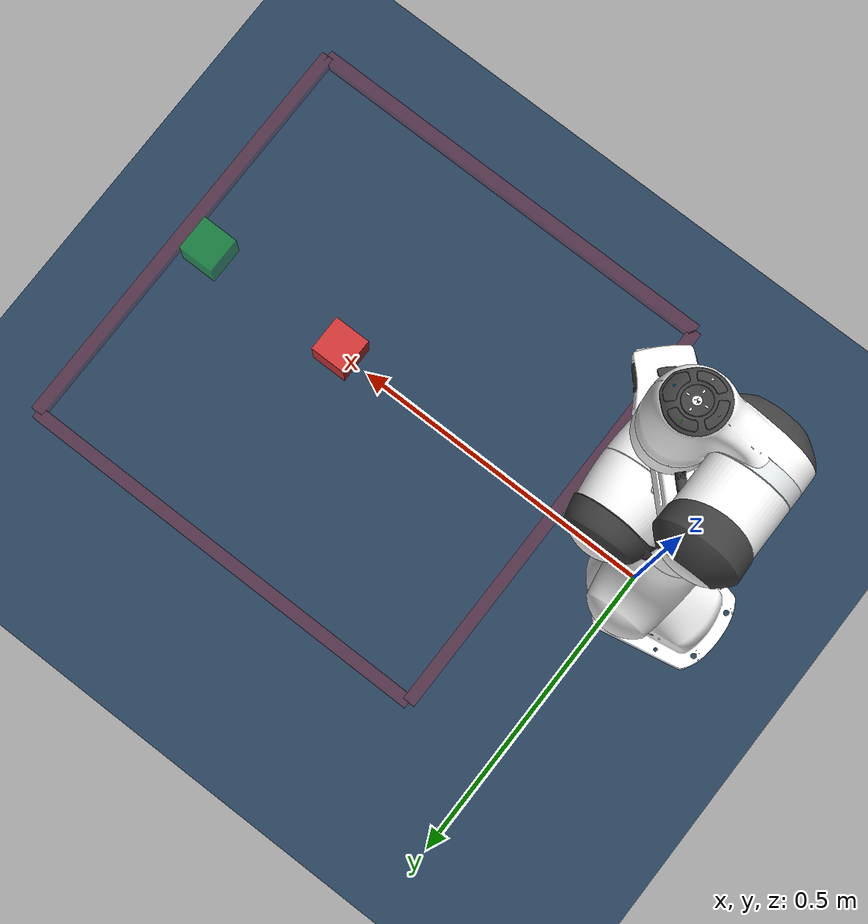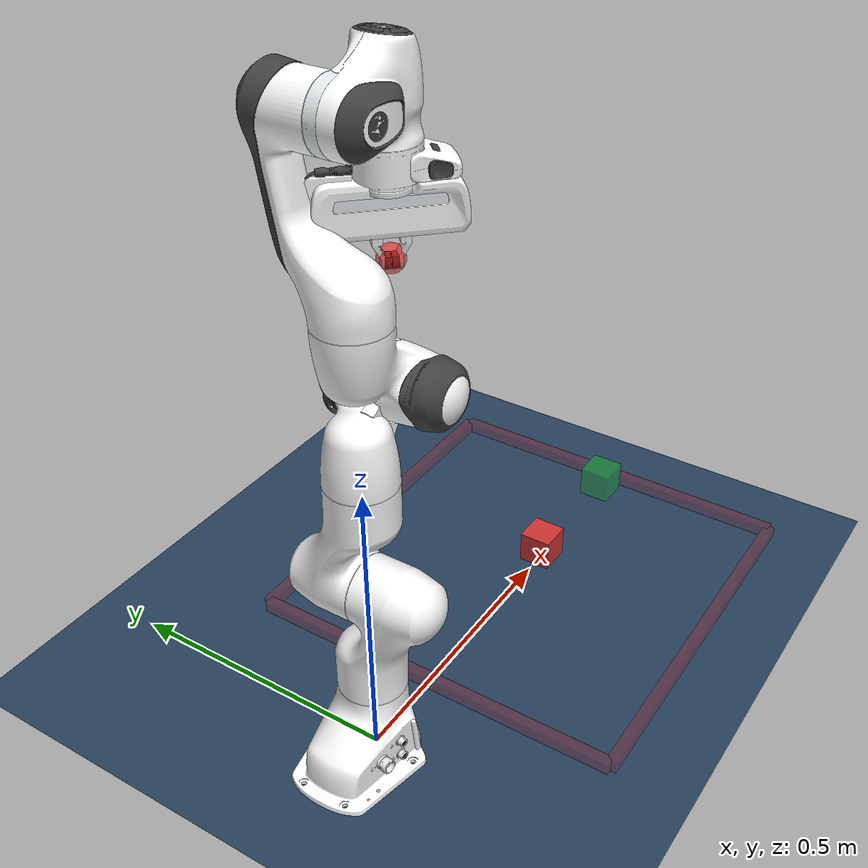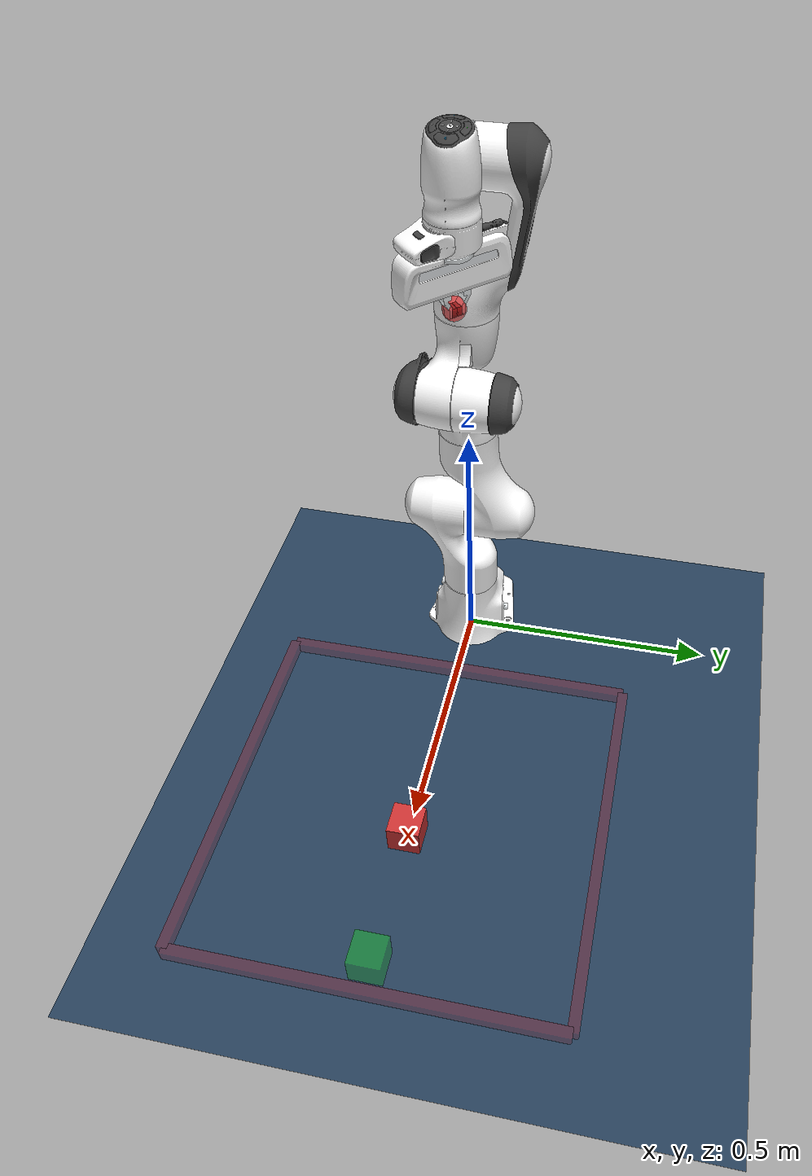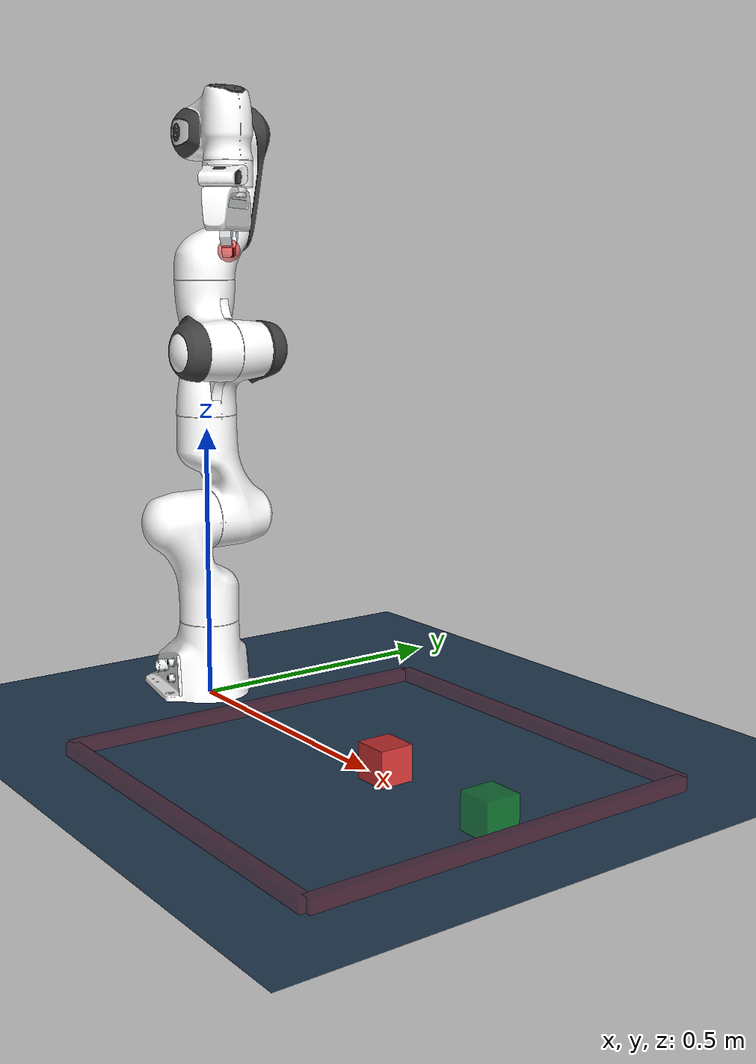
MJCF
<mujoco model="panda scene">
  <include file="mjx_panda_cartesian.xml"/>

  <statistic center="0.3 0 0.4" extent="1"/>

  <option timestep="0.01" iterations="4"  ls_iterations="10" integrator="implicitfast" impratio="0.1">
    <flag eulerdamp="disable"/>
  </option>
  <custom>
    <numeric data="6" name="max_contact_points"/>
    <numeric data="6" name="max_geom_pairs"/>
  </custom>

  <visual>
    <headlight diffuse="0.6 0.6 0.6" ambient="0.3 0.3 0.3" specular="0 0 0"/>
    <rgba haze="0.15 0.25 0.35 1"/>
    <global azimuth="120" elevation="-20" offwidth="640" offheight="480"/>
    <scale contactwidth="0.075" contactheight="0.025" forcewidth="0.05" com="0.05" framewidth="0.01" framelength="0.2"/>
  </visual>

  <asset>
    <texture type="skybox" builtin="gradient" rgb1="0.3 0.5 0.7" rgb2="0 0 0" width="512" height="3072"/>
    <texture type="2d" name="groundplane" builtin="checker" mark="edge" rgb1="0.2 0.3 0.4" rgb2="0.1 0.2 0.3"
      markrgb="0.8 0.8 0.8" width="300" height="300"/>
    <material name="groundplane" texture="groundplane" texuniform="true" texrepeat="5 5" reflectance="0.2"/>
    <material name="table" rgba="0.7 0.7 0.7 1"/>
    <material name="box" rgba="0.8 0.2 0.2 1"/>
    <material name="boundary" rgba="1 0 0 0.1"/>
  </asset>

  <worldbody>
    <light pos="0 0 1.5" dir="0 0 -1" directional="true"/>
    <geom name="floor" size="0 0 0.05" type="plane" material="groundplane" contype="1"/>

    <!-- table -->
    <body name="table" pos="0.5 0 0">
       <!-- Virtual boundary visualization -->
      <geom name="bound_x_pos" type="box" size="0.01 0.35 0.02" pos="0.35 0 0" material="boundary" contype="0" conaffinity="0"/>
      <geom name="bound_x_neg" type="box" size="0.01 0.35 0.02" pos="-0.35 0 0" material="boundary" contype="0" conaffinity="0"/>
      <geom name="bound_y_pos" type="box" size="0.35 0.01 0.02" pos="0 0.35 0" material="boundary" contype="0" conaffinity="0"/>
      <geom name="bound_y_neg" type="box" size="0.35 0.01 0.02" pos="0 -0.35 0" material="boundary" contype="0" conaffinity="0"/>
    </body>

    <!-- pushable box -->
    <body name="box" pos="0.55 0 0.03">
      <joint type="free"/>
      <geom name="box_geom" type="box" size="0.03 0.03 0.03" material="box" condim="3"
        friction="0.6" contype="2" conaffinity="1" solref="0.02 1" priority="1"
        mass="0.15"/>
      <site name="box_site" pos="0 0 0" size="0.005"/>
    </body>

    <!-- Replace static goal site with mocap body -->
    <body name="goal" mocap="true" pos="0.8 0.0 0.03" quat="1 0 0 0">
      <geom type="box" size="0.03 0.03 0.03" contype="0" conaffinity="0" rgba="0 1 0 0.3" />
    </body>
  </worldbody>

  <!-- Sensors for the box -->
  <sensor>
    <framepos name="box_position" objtype="body" objname="box" reftype="site" refname="reference" />
    <framequat name="box_orientation" objtype="body" objname="box" reftype="site" refname="reference"/>
  </sensor>

  <keyframe>
    <key name="home" qpos="-0.196 -0.189 0.182 -2.1 0.0378 1.91 0.756 0 0 0.4 0 0 0 0 0 0" ctrl="0.5 0 0.5 -3.14  0 0"/>
  </keyframe>
</mujoco>

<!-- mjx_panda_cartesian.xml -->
<mujoco model="panda">
  <compiler angle="radian" meshdir="assets" autolimits="true"/>

  <default>
    <default class="panda">
      <material specular="0.5" shininess="0.25"/>
      <joint armature="0.1" damping="1" axis="0 0 1" range="-2.8973 2.8973"/>
      <general dyntype="none" biastype="affine" ctrlrange="-2.8973 2.8973" forcerange="-87 87"/>
      <position forcerange="-100 100"/>
      <default class="finger">
        <joint axis="0 1 0" type="slide" range="0 1e-6"/>
      </default>

      <default class="visual">
        <geom type="mesh" contype="0" conaffinity="0" group="2"/>
      </default>
      <default class="collision">
        <geom group="3" type="mesh" contype="0" conaffinity="0"/>
        <default class="primitive_collision">
          <geom group="3" type="box" contype="0" conaffinity="0"
           condim="3" solimp="0.99 0.995 0.01" solref="0.01 1" friction="1 0.005 0.0001"/>
          <default class="fingertip_pad_collision_1">
            <geom type="box" size="0.011 0.0075 0.01" pos="0 0.0185 0.011"/>
          </default>
          <default class="fingertip_pad_collision_2">
            <geom type="box" size="0.011 0.0044 0.0019" pos="0 0.0068 0.0022"/>
          </default>
          <default class="fingertip_pad_collision_3">
            <geom type="box" size="0.00875 0.0035 0.01175" pos="0 0.0159 0.02835" quat="1 0.25 0 0"/>
          </default>
          <default class="fingertip_pad_collision_4">
            <geom type="box" size="0.00875 0.0076 0.00825" pos="0 0.00758 0.04525" conaffinity="3"/>
          </default>
        </default>
      </default>
    </default>
  </default>

  <default>
    <default class="translation">
      <position kp="200" kv="100" ctrlrange="-1 1"/>
    </default>
    <default class="rotation">
      <position kp="30" kv="20" ctrlrange="-3.14 3.14"/>
    </default>
    <joint armature="0" damping="0" stiffness="0" actuatorfrcrange="-1 1" actuatorgravcomp="true"/>
    <site type="box" size=".012 .012 .012" rgba=".7 .7 .8 1"/>
  </default>

  <asset>
    <material class="panda" name="white" rgba="1 1 1 1"/>
    <material class="panda" name="off_white" rgba="0.901961 0.921569 0.929412 1"/>
    <material class="panda" name="black" rgba="0.25 0.25 0.25 1"/>
    <material class="panda" name="green" rgba="0 1 0 1"/>
    <material class="panda" name="light_blue" rgba="0.039216 0.541176 0.780392 1"/>

    <!-- Collision meshes -->
    <mesh name="link0_c" file="link0.stl"/>
    <mesh name="link1_c" file="link1.stl"/>
    <mesh name="link2_c" file="link2.stl"/>
    <mesh name="link3_c" file="link3.stl"/>
    <mesh name="link4_c" file="link4.stl"/>
    <mesh name="link5_c0" file="link5_collision_0.obj"/>
    <mesh name="link5_c1" file="link5_collision_1.obj"/>
    <mesh name="link5_c2" file="link5_collision_2.obj"/>
    <mesh name="link6_c" file="link6.stl"/>
    <mesh name="link7_c" file="link7.stl"/>
    <mesh name="hand_c" file="hand.stl"/>

    <!-- Visual meshes -->
    <mesh file="link0_0.obj"/>
    <mesh file="link0_1.obj"/>
    <mesh file="link0_2.obj"/>
    <mesh file="link0_3.obj"/>
    <mesh file="link0_4.obj"/>
    <mesh file="link0_5.obj"/>
    <mesh file="link0_7.obj"/>
    <mesh file="link0_8.obj"/>
    <mesh file="link0_9.obj"/>
    <mesh file="link0_10.obj"/>
    <mesh file="link0_11.obj"/>
    <mesh file="link1.obj"/>
    <mesh file="link2.obj"/>
    <mesh file="link3_0.obj"/>
    <mesh file="link3_1.obj"/>
    <mesh file="link3_2.obj"/>
    <mesh file="link3_3.obj"/>
    <mesh file="link4_0.obj"/>
    <mesh file="link4_1.obj"/>
    <mesh file="link4_2.obj"/>
    <mesh file="link4_3.obj"/>
    <mesh file="link5_0.obj"/>
    <mesh file="link5_1.obj"/>
    <mesh file="link5_2.obj"/>
    <mesh file="link6_0.obj"/>
    <mesh file="link6_1.obj"/>
    <mesh file="link6_2.obj"/>
    <mesh file="link6_3.obj"/>
    <mesh file="link6_4.obj"/>
    <mesh file="link6_5.obj"/>
    <mesh file="link6_6.obj"/>
    <mesh file="link6_7.obj"/>
    <mesh file="link6_8.obj"/>
    <mesh file="link6_9.obj"/>
    <mesh file="link6_10.obj"/>
    <mesh file="link6_11.obj"/>
    <mesh file="link6_12.obj"/>
    <mesh file="link6_13.obj"/>
    <mesh file="link6_14.obj"/>
    <mesh file="link6_15.obj"/>
    <mesh file="link6_16.obj"/>
    <mesh file="link7_0.obj"/>
    <mesh file="link7_1.obj"/>
    <mesh file="link7_2.obj"/>
    <mesh file="link7_3.obj"/>
    <mesh file="link7_4.obj"/>
    <mesh file="link7_5.obj"/>
    <mesh file="link7_6.obj"/>
    <mesh file="link7_7.obj"/>
    <mesh file="hand_0.obj"/>
    <mesh file="hand_1.obj"/>
    <mesh file="hand_2.obj"/>
    <mesh file="hand_3.obj"/>
    <mesh file="hand_4.obj"/>
    <mesh file="finger_0.obj"/>
    <mesh file="finger_1.obj"/>
  </asset>

  <worldbody>
    <light name="top" pos="0 0 2" mode="trackcom"/>
    <site name="reference" pos="0.0 0.0 0.0" 	euler="0 0 0.0" size="0.01" rgba="1 0 0 0"/>
    <body name="link0" childclass="panda" gravcomp="1">
      <inertial mass="0.629769" pos="-0.041018 -0.00014 0.049974"
        fullinertia="0.00315 0.00388 0.004285 8.2904e-7 0.00015 8.2299e-6"/>
      <geom mesh="link0_0" material="off_white" class="visual"/>
      <geom mesh="link0_1" material="black" class="visual"/>
      <geom mesh="link0_2" material="off_white" class="visual"/>
      <geom mesh="link0_3" material="black" class="visual"/>
      <geom mesh="link0_4" material="off_white" class="visual"/>
      <geom mesh="link0_5" material="black" class="visual"/>
      <geom mesh="link0_7" material="white" class="visual"/>
      <geom mesh="link0_8" material="white" class="visual"/>
      <geom mesh="link0_9" material="black" class="visual"/>
      <geom mesh="link0_10" material="off_white" class="visual"/>
      <geom mesh="link0_11" material="white" class="visual"/>
      <geom mesh="link0_c" class="collision"/>
      <body name="link1" pos="0 0 0.333" gravcomp="1">
        <inertial mass="4.970684" pos="0.003875 0.002081 -0.04762"
          fullinertia="0.70337 0.70661 0.0091170 -0.00013900 0.0067720 0.019169"/>
        <joint name="joint1" range="-2.8973 2.8973"/>
        <geom material="white" mesh="link1" class="visual"/>
        <geom mesh="link1_c" class="collision"/>
        <body name="link2" quat="1 -1 0 0" gravcomp="1">
          <inertial mass="0.646926" pos="-0.003141 -0.02872 0.003495"
            fullinertia="0.0079620 2.8110e-2 2.5995e-2 -3.925e-3 1.0254e-2 7.04e-4"/>
          <joint name="joint2" range="-1.7628 1.7628"/>
          <geom material="white" mesh="link2" class="visual"/>
          <geom mesh="link2_c" class="collision"/>
          <body name="link3" pos="0 -0.316 0" quat="1 1 0 0" gravcomp="1">
            <joint name="joint3" range="-2.8973 2.8973"/>
            <inertial mass="3.228604" pos="2.7518e-2 3.9252e-2 -6.6502e-2"
              fullinertia="3.7242e-2 3.6155e-2 1.083e-2 -4.761e-3 -1.1396e-2 -1.2805e-2"/>
            <geom mesh="link3_0" material="white" class="visual"/>
            <geom mesh="link3_1" material="white" class="visual"/>
            <geom mesh="link3_2" material="white" class="visual"/>
            <geom mesh="link3_3" material="black" class="visual"/>
            <geom mesh="link3_c" class="collision"/>
            <body name="link4" pos="0.0825 0 0" quat="1 1 0 0" gravcomp="1">
              <inertial mass="3.587895" pos="-5.317e-2 1.04419e-1 2.7454e-2"
                fullinertia="2.5853e-2 1.9552e-2 2.8323e-2 7.796e-3 -1.332e-3 8.641e-3"/>
              <joint name="joint4" range="-3.0718 -0.0698" />
              <geom mesh="link4_0" material="white" class="visual"/>
              <geom mesh="link4_1" material="white" class="visual"/>
              <geom mesh="link4_2" material="black" class="visual"/>
              <geom mesh="link4_3" material="white" class="visual"/>
              <geom mesh="link4_c" class="collision"/>
              <body name="link5" pos="-0.0825 0.384 0" quat="1 -1 0 0" gravcomp="1">
                <inertial mass="1.225946" pos="-1.1953e-2 4.1065e-2 -3.8437e-2"
                  fullinertia="3.5549e-2 2.9474e-2 8.627e-3 -2.117e-3 -4.037e-3 2.29e-4"/>
                <joint name="joint5" range="-2.8973 2.8973"/>
                <geom mesh="link5_0" material="black" class="visual"/>
                <geom mesh="link5_1" material="white" class="visual"/>
                <geom mesh="link5_2" material="white" class="visual"/>
                <geom mesh="link5_c0" class="collision"/>
                <geom mesh="link5_c1" class="collision"/>
                <geom mesh="link5_c2" class="collision"/>
                <body name="link6" quat="1 1 0 0" gravcomp="1">
                  <inertial mass="1.666555" pos="6.0149e-2 -1.4117e-2 -1.0517e-2"
                    fullinertia="1.964e-3 4.354e-3 5.433e-3 1.09e-4 -1.158e-3 3.41e-4"/>
                  <joint name="joint6" range="-0.0175 3.7525" />
                  <geom mesh="link6_0" material="off_white" class="visual"/>
                  <geom mesh="link6_1" material="white" class="visual"/>
                  <geom mesh="link6_2" material="black" class="visual"/>
                  <geom mesh="link6_3" material="white" class="visual"/>
                  <geom mesh="link6_4" material="white" class="visual"/>
                  <geom mesh="link6_5" material="white" class="visual"/>
                  <geom mesh="link6_6" material="white" class="visual"/>
                  <geom mesh="link6_7" material="light_blue" class="visual"/>
                  <geom mesh="link6_8" material="light_blue" class="visual"/>
                  <geom mesh="link6_9" material="black" class="visual"/>
                  <geom mesh="link6_10" material="black" class="visual"/>
                  <geom mesh="link6_11" material="white" class="visual"/>
                  <geom mesh="link6_12" material="green" class="visual"/>
                  <geom mesh="link6_13" material="white" class="visual"/>
                  <geom mesh="link6_14" material="black" class="visual"/>
                  <geom mesh="link6_15" material="black" class="visual"/>
                  <geom mesh="link6_16" material="white" class="visual"/>
                  <geom mesh="link6_c" class="collision"/>
                  <body name="link7" pos="0.088 0 0" quat="1 1 0 0" gravcomp="1">
                    <inertial mass="7.35522e-01" pos="1.0517e-2 -4.252e-3 6.1597e-2"
                      fullinertia="1.2516e-2 1.0027e-2 4.815e-3 -4.28e-4 -1.196e-3 -7.41e-4"/>
                    <joint name="joint7" range="-2.8973 2.8973"/>
                    <geom mesh="link7_0" material="white" class="visual"/>
                    <geom mesh="link7_1" material="black" class="visual"/>
                    <geom mesh="link7_2" material="black" class="visual"/>
                    <geom mesh="link7_3" material="black" class="visual"/>
                    <geom mesh="link7_4" material="black" class="visual"/>
                    <geom mesh="link7_5" material="black" class="visual"/>
                    <geom mesh="link7_6" material="black" class="visual"/>
                    <geom mesh="link7_7" material="white" class="visual"/>
                    <geom mesh="link7_c" class="collision"/>
                    <body name="hand" pos="0 0 0.107" quat="0.9238795 0 0 -0.3826834" gravcomp="1">
                      <inertial mass="0.73" pos="-0.01 0 0.03" diaginertia="0.001 0.0025 0.0017"/>
                      <geom mesh="hand_0" material="off_white" class="visual"/>
                      <geom mesh="hand_1" material="black" class="visual"/>
                      <geom mesh="hand_2" material="black" class="visual"/>
                      <geom mesh="hand_3" material="white" class="visual"/>
                      <geom mesh="hand_4" material="off_white" class="visual"/>
                      <geom mesh="hand_c" class="collision"/>
                      <site name="gripper" pos="0 0 0.1034"/>
                       <!-- Sphere collision -->
                       <geom name="gripper_sphere" type="sphere" size="0.02" pos="0 0 0.1" conaffinity="3" rgba="1 0 0 0.5" />
                      <body name="left_finger" pos="0 0 0.0584" gravcomp="1">
                        <inertial mass="0.015" pos="0 0 0" diaginertia="2.375e-6 2.375e-6 7.5e-7"/>
                        <joint name="finger_joint1" class="finger" />
                        <geom mesh="finger_0" material="off_white" class="visual"/>
                        <geom mesh="finger_1" material="black" class="visual"/>
                        <geom mesh="finger_0" class="collision"/>
                      </body>
                      <body name="right_finger" pos="0 0 0.0584" quat="0 0 0 1" gravcomp="1">
                        <inertial mass="0.015" pos="0 0 0" diaginertia="2.375e-6 2.375e-6 7.5e-7"/>
                        <joint name="finger_joint2" class="finger" />
                        <geom mesh="finger_0" material="off_white" class="visual"/>
                        <geom mesh="finger_1" material="black" class="visual"/>
                        <geom mesh="finger_0" class="collision"/>
                      </body>
                    </body>
                  </body>
                </body>
              </body>
            </body>
          </body>
        </body>
      </body>
    </body>
  </worldbody>

  <equality>
    <joint joint1="finger_joint1" joint2="finger_joint2" solimp="0.95 0.99 0.001" solref="0.005 1"/>
  </equality>

  <actuator>
    <position name="x"  site="gripper" refsite="reference" gear="1 0 0 0 0 0" class="translation"/>
    <position name="y"  site="gripper" refsite="reference" gear="0 1 0 0 0 0" class="translation"/>
    <position name="z"  site="gripper" refsite="reference" gear="0 0 1 0 0 0" class="translation"/>
    <position name="rx" site="gripper" refsite="reference" gear="0 0 0 1 0 0" class="rotation"/>
    <position name="ry" site="gripper" refsite="reference" gear="0 0 0 0 1 0" class="rotation"/>
    <position name="rz" site="gripper" refsite="reference" gear="0 0 0 0 0 1" class="rotation"/>

  </actuator>

    <!-- Sensors for the gripper -->
  <sensor>
    <framepos name="gripper_position" objtype="site" objname="gripper" reftype="site" refname="reference" />
    <framequat name="gripper_orientation" objtype="site" objname="gripper" reftype="site" refname="reference"/>
  </sensor>

  <keyframe>
    <key name="home" qpos="-0.196 -0.189 0.182 -2.1 0.0378 1.91 0.756 0 0" ctrl="0.5 0 0.5 -3.14  0 0"/>
  </keyframe>
</mujoco>
